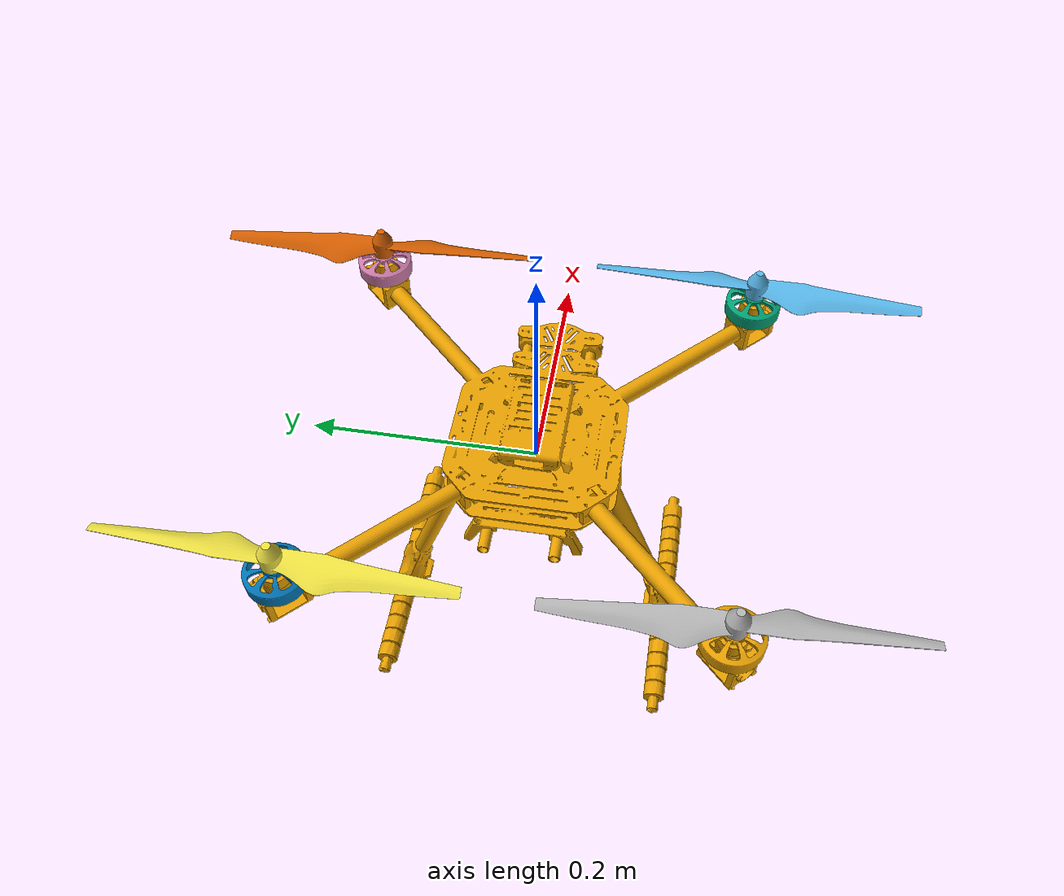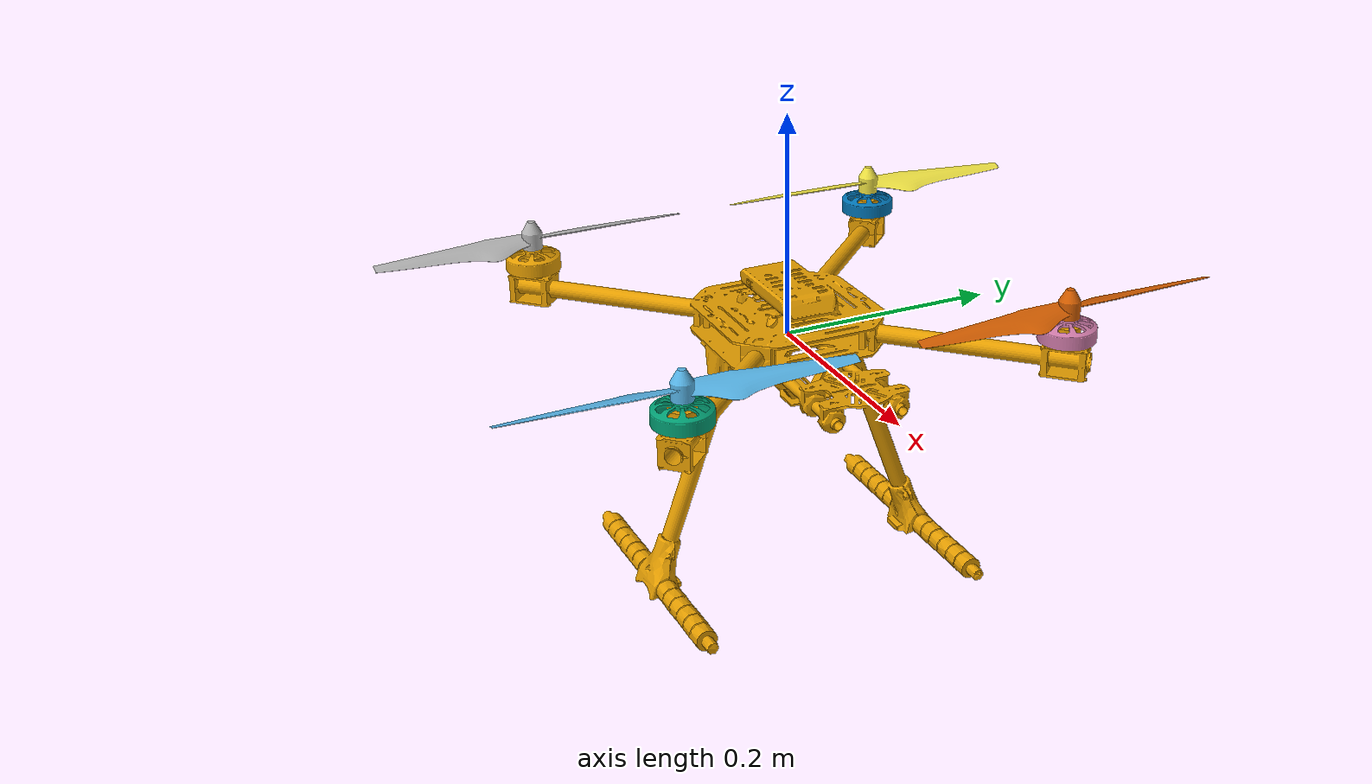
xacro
<?xml version="1.0"?>
<robot name="x500_base">

  <!-- Base Link -->
  <link name="base_link">
    <visual>
      <origin xyz="0 0 0.025" rpy="0 0 3.141592654"/>
      <geometry>
        <mesh filename="package://px4_description/meshes/NXP-HGD-CF.dae" scale="1 1 1"/>
      </geometry>
    </visual>

    <!-- Additional visuals from SDF -->
    <visual>
      <origin xyz="0.174 0.174 .032" rpy="0 0 -.45"/>
      <geometry>
        <mesh filename="package://px4_description/meshes/5010Base.dae" scale="1 1 1"/>
      </geometry>
    </visual>

    <visual>
      <origin xyz="-0.174 0.174 .032" rpy="0 0 -.45"/>
      <geometry>
        <mesh filename="package://px4_description/meshes/5010Base.dae" scale="1 1 1"/>
      </geometry>
    </visual>

    <visual>
      <origin xyz="0.174 -0.174 .032" rpy="0 0 -.45"/>
      <geometry>
        <mesh filename="package://px4_description/meshes/5010Base.dae" scale="1 1 1"/>
      </geometry>
    </visual>

    <visual>
      <origin xyz="-0.174 -0.174 .032" rpy="0 0 -.45"/>
      <geometry>
        <mesh filename="package://px4_description/meshes/5010Base.dae" scale="1 1 1"/>
      </geometry>
    </visual>
  </link>

  <!-- Rotors -->
  <link name="rotor_0">
    <visual>
      <geometry>
        <mesh filename="package://px4_description/meshes/1345_prop_ccw_moved_origin.stl" scale="0.8461538461538461 0.8461538461538461 0.8461538461538461"/>
      </geometry>
    </visual>
  </link>
  <joint name="rotor_0_joint" type="continuous">
    <parent link="base_link"/>
    <child link="rotor_0"/>
    <origin xyz="0.174 -0.174 0.05" rpy="0 0 0"/>
    <axis xyz="0 0 1"/>
  </joint>

  <link name="rotor_0_bell">
    <visual>
      <geometry>
        <mesh filename="package://px4_description/meshes/5010Bell.dae" scale="0.8461538461538461 0.8461538461538461 0.8461538461538461"/>
      </geometry>
    </visual>
  </link>
  <joint name="rotor_0_bell_joint" type="fixed">
    <parent link="base_link"/>
    <child link="rotor_0_bell"/>
    <origin xyz="0.174 -0.174 0.03" rpy="0 0 0"/>
  </joint>

  <link name="rotor_1">
    <visual>
      <geometry>
        <mesh filename="package://px4_description/meshes/1345_prop_ccw_moved_origin.stl" scale="0.8461538461538461 0.8461538461538461 0.8461538461538461"/>
      </geometry>
    </visual>
  </link>
  <joint name="rotor_1_joint" type="continuous">
    <parent link="base_link"/>
    <child link="rotor_1"/>
    <origin xyz="-0.174 0.174 0.05" rpy="0 0 0"/>
    <axis xyz="0 0 1"/>
  </joint>

  <link name="rotor_1_bell">
    <visual>
      <geometry>
        <mesh filename="package://px4_description/meshes/5010Bell.dae" scale="0.8461538461538461 0.8461538461538461 0.8461538461538461"/>
      </geometry>
    </visual>
  </link>
  <joint name="rotor_1_bell_joint" type="fixed">
    <parent link="base_link"/>
    <child link="rotor_1_bell"/>
    <origin xyz="-0.174 0.174 0.03" rpy="0 0 0"/>
  </joint>

  <link name="rotor_2">
    <visual>
      <geometry>
        <mesh filename="package://px4_description/meshes/1345_prop_cw_moved_origin.stl" scale="0.8461538461538461 0.8461538461538461 0.8461538461538461"/>
      </geometry>
    </visual>
  </link>
  <joint name="rotor_2_joint" type="continuous">
    <parent link="base_link"/>
    <child link="rotor_2"/>
    <origin xyz="0.174 0.174 0.05" rpy="0 0 0"/>
    <axis xyz="0 0 1"/>
  </joint>

  <link name="rotor_2_bell">
    <visual>
      <geometry>
        <mesh filename="package://px4_description/meshes/5010Bell.dae" scale="0.8461538461538461 0.8461538461538461 0.8461538461538461"/>
      </geometry>
    </visual>
  </link>
  <joint name="rotor_2_bell_joint" type="fixed">
    <parent link="base_link"/>
    <child link="rotor_2_bell"/>
    <origin xyz="0.174 0.174 0.03" rpy="0 0 0"/>
  </joint>

  <link name="rotor_3">
    <visual>
      <geometry>
        <mesh filename="package://px4_description/meshes/1345_prop_cw_moved_origin.stl" scale="0.8461538461538461 0.8461538461538461 0.8461538461538461"/>
      </geometry>
    </visual>
  </link>
  <joint name="rotor_3_joint" type="continuous">
    <parent link="base_link"/>
    <child link="rotor_3"/>
    <origin rpy="0 0 0" xyz="-0.174 -0.174 0.05"/>
    <axis xyz="0 0 1"/>
  </joint>

  <link name="rotor_3_bell">
    <visual>
      <geometry>
        <mesh filename="package://px4_description/meshes/5010Bell.dae" scale="0.8461538461538461 0.8461538461538461 0.8461538461538461"/>
      </geometry>
    </visual>
  </link>
  <joint name="rotor_3_bell_joint" type="fixed">
    <parent link="base_link"/>
    <child link="rotor_3_bell"/>
    <origin xyz="-0.174 -0.174 0.03" rpy="0 0 0"/>
  </joint>

</robot>
